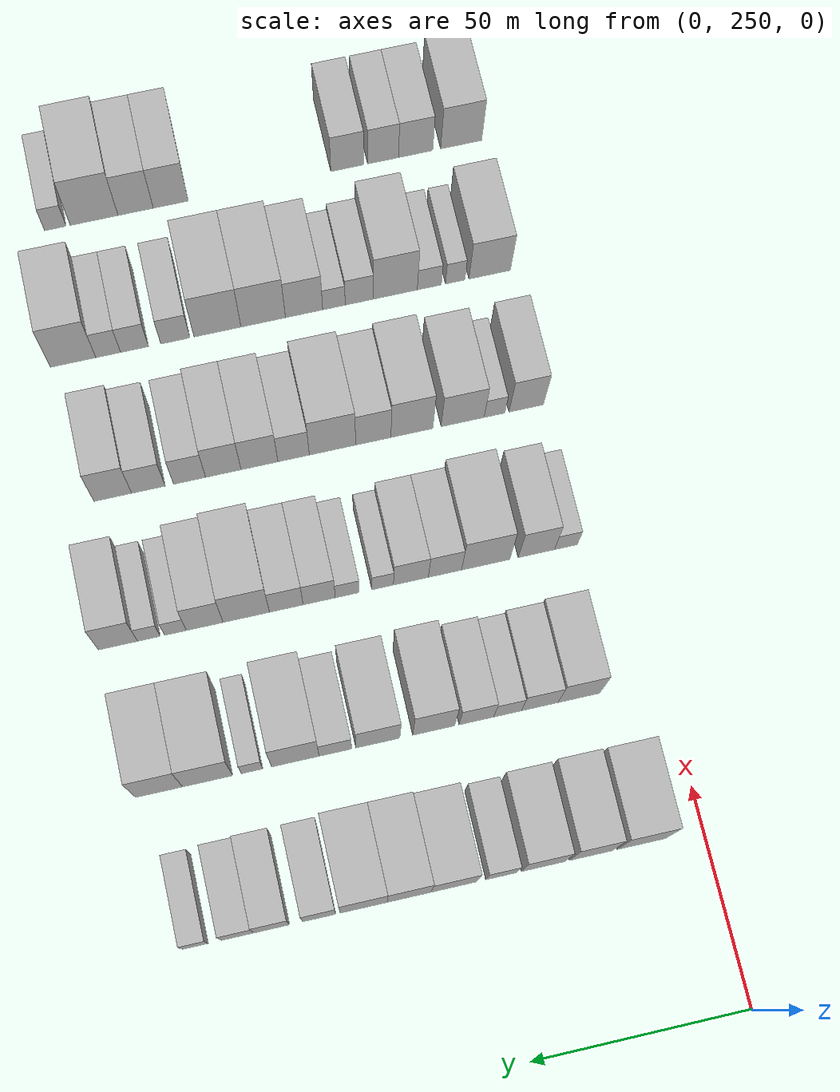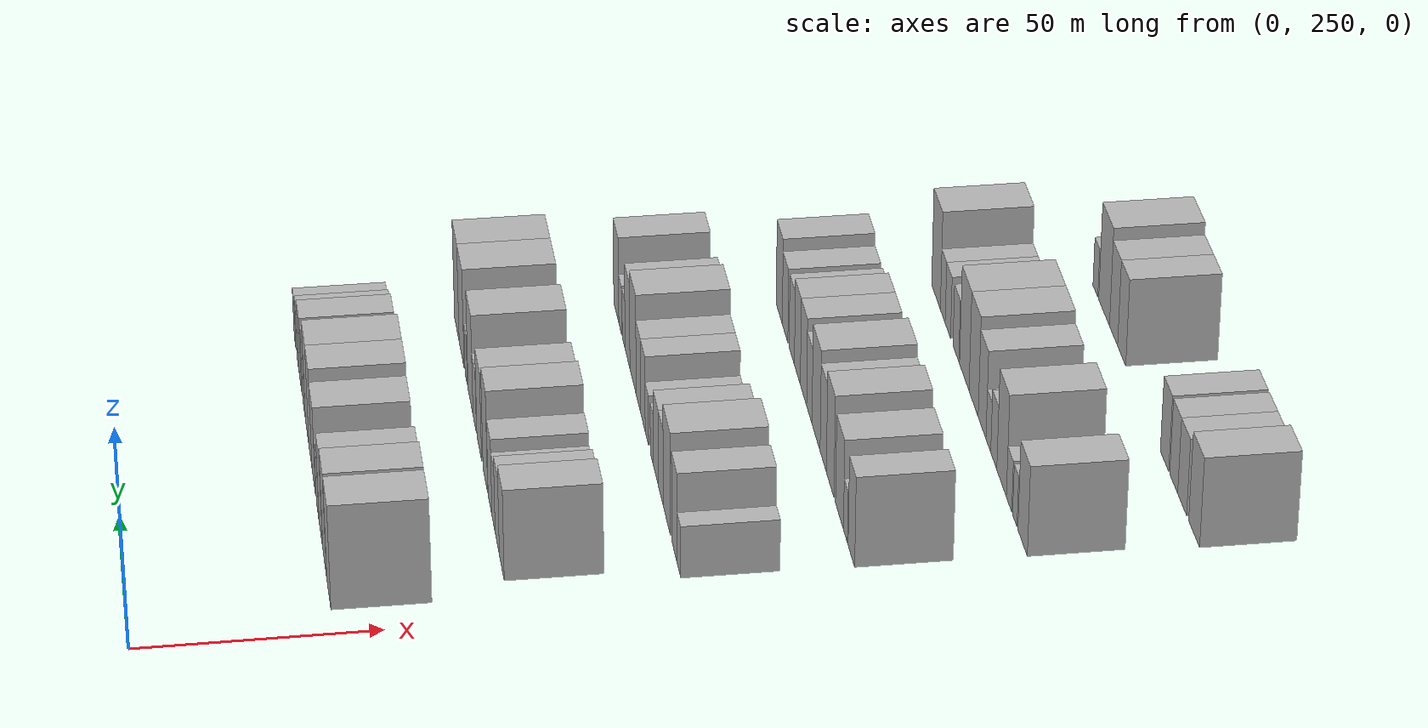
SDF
<sdf version="1.6">
 <world name="default">
  <model name="building_96">
   <static>1</static>
   <pose>50.0000 264.3981 0 0.000000 0.000000 0.000000</pose>
   <link name="link">
    <pose>0 0 12.00 0 0 0</pose>
    <collision name="collision"><geometry><box><size>20.0000 11.2214 24.0000</size></box></geometry></collision>
    <visual name="visual">
     <cast_shadows>0</cast_shadows>
     <geometry><box><size>20.0000 11.2214 24.0000</size></box></geometry>
     <material>
      <script>
       <uri>model://HANNAS_wall/materials/scripts</uri>
       <uri>model://HANNAS_wall/materials/textures</uri>
       <name>vrc/HANNAS_wall</name>
      </script>
     </material>
    </visual>
   </link>
  </model>
  <model name="building_97">
   <static>1</static>
   <pose>50.0000 275.9906 0 0.000000 0.000000 0.000000</pose>
   <link name="link">
    <pose>0 0 12.00 0 0 0</pose>
    <collision name="collision"><geometry><box><size>20.0000 9.9636 24.0000</size></box></geometry></collision>
    <visual name="visual">
     <cast_shadows>0</cast_shadows>
     <geometry><box><size>20.0000 9.9636 24.0000</size></box></geometry>
     <material>
      <script>
       <uri>model://HANNAS_wall/materials/scripts</uri>
       <uri>model://HANNAS_wall/materials/textures</uri>
       <name>vrc/HANNAS_wall</name>
      </script>
     </material>
    </visual>
   </link>
  </model>
  <model name="building_98">
   <static>1</static>
   <pose>50.0000 286.9950 0 0.000000 0.000000 0.000000</pose>
   <link name="link">
    <pose>0 0 10.50 0 0 0</pose>
    <collision name="collision"><geometry><box><size>20.0000 10.0453 21.0000</size></box></geometry></collision>
    <visual name="visual">
     <cast_shadows>0</cast_shadows>
     <geometry><box><size>20.0000 10.0453 21.0000</size></box></geometry>
     <material>
      <script>
       <uri>model://HANNAS_wall/materials/scripts</uri>
       <uri>model://HANNAS_wall/materials/textures</uri>
       <name>vrc/HANNAS_wall</name>
      </script>
     </material>
    </visual>
   </link>
  </model>
  <model name="building_99">
   <static>1</static>
   <pose>50.0000 296.5923 0 0.000000 0.000000 0.000000</pose>
   <link name="link">
    <pose>0 0 7.50 0 0 0</pose>
    <collision name="collision"><geometry><box><size>20.0000 7.1494 15.0000</size></box></geometry></collision>
    <visual name="visual">
     <cast_shadows>0</cast_shadows>
     <geometry><box><size>20.0000 7.1494 15.0000</size></box></geometry>
     <material>
      <script>
       <uri>model://HANNAS_wall/materials/scripts</uri>
       <uri>model://HANNAS_wall/materials/textures</uri>
       <name>vrc/HANNAS_wall</name>
      </script>
     </material>
    </visual>
   </link>
  </model>
  <model name="building_100">
   <static>1</static>
   <pose>50.0000 307.4089 0 0.000000 0.000000 0.000000</pose>
   <link name="link">
    <pose>0 0 10.50 0 0 0</pose>
    <collision name="collision"><geometry><box><size>20.0000 10.4838 21.0000</size></box></geometry></collision>
    <visual name="visual">
     <cast_shadows>0</cast_shadows>
     <geometry><box><size>20.0000 10.4838 21.0000</size></box></geometry>
     <material>
      <script>
       <uri>model://HANNAS_wall/materials/scripts</uri>
       <uri>model://HANNAS_wall/materials/textures</uri>
       <name>vrc/HANNAS_wall</name>
      </script>
     </material>
    </visual>
   </link>
  </model>
  <model name="building_101">
   <static>1</static>
   <pose>50.0000 317.6426 0 0.000000 0.000000 0.000000</pose>
   <link name="link">
    <pose>0 0 12.00 0 0 0</pose>
    <collision name="collision"><geometry><box><size>20.0000 9.9837 24.0000</size></box></geometry></collision>
    <visual name="visual">
     <cast_shadows>0</cast_shadows>
     <geometry><box><size>20.0000 9.9837 24.0000</size></box></geometry>
     <material>
      <script>
       <uri>model://HANNAS_wall/materials/scripts</uri>
       <uri>model://HANNAS_wall/materials/textures</uri>
       <name>vrc/HANNAS_wall</name>
      </script>
     </material>
    </visual>
   </link>
  </model>
  <model name="building_102">
   <static>1</static>
   <pose>50.0000 327.9427 0 0.000000 0.000000 0.000000</pose>
   <link name="link">
    <pose>0 0 12.00 0 0 0</pose>
    <collision name="collision"><geometry><box><size>20.0000 10.6165 24.0000</size></box></geometry></collision>
    <visual name="visual">
     <cast_shadows>0</cast_shadows>
     <geometry><box><size>20.0000 10.6165 24.0000</size></box></geometry>
     <material>
      <script>
       <uri>model://HANNAS_wall/materials/scripts</uri>
       <uri>model://HANNAS_wall/materials/textures</uri>
       <name>vrc/HANNAS_wall</name>
      </script>
     </material>
    </visual>
   </link>
  </model>
  <model name="building_103">
   <static>1</static>
   <pose>50.0000 337.9796 0 0.000000 0.000000 0.000000</pose>
   <link name="link">
    <pose>0 0 9.00 0 0 0</pose>
    <collision name="collision"><geometry><box><size>20.0000 7.4574 18.0000</size></box></geometry></collision>
    <visual name="visual">
     <cast_shadows>0</cast_shadows>
     <geometry><box><size>20.0000 7.4574 18.0000</size></box></geometry>
     <material>
      <script>
       <uri>model://HANNAS_wall/materials/scripts</uri>
       <uri>model://HANNAS_wall/materials/textures</uri>
       <name>vrc/HANNAS_wall</name>
      </script>
     </material>
    </visual>
   </link>
  </model>
  <model name="building_104">
   <static>1</static>
   <pose>50.0000 348.6979 0 0.000000 0.000000 0.000000</pose>
   <link name="link">
    <pose>0 0 9.00 0 0 0</pose>
    <collision name="collision"><geometry><box><size>20.0000 7.9792 18.0000</size></box></geometry></collision>
    <visual name="visual">
     <cast_shadows>0</cast_shadows>
     <geometry><box><size>20.0000 7.9792 18.0000</size></box></geometry>
     <material>
      <script>
       <uri>model://HANNAS_wall/materials/scripts</uri>
       <uri>model://HANNAS_wall/materials/textures</uri>
       <name>vrc/HANNAS_wall</name>
      </script>
     </material>
    </visual>
   </link>
  </model>
  <model name="building_105">
   <static>1</static>
   <pose>50.0000 356.3643 0 0.000000 0.000000 0.000000</pose>
   <link name="link">
    <pose>0 0 7.50 0 0 0</pose>
    <collision name="collision"><geometry><box><size>20.0000 7.3535 15.0000</size></box></geometry></collision>
    <visual name="visual">
     <cast_shadows>0</cast_shadows>
     <geometry><box><size>20.0000 7.3535 15.0000</size></box></geometry>
     <material>
      <script>
       <uri>model://HANNAS_wall/materials/scripts</uri>
       <uri>model://HANNAS_wall/materials/textures</uri>
       <name>vrc/HANNAS_wall</name>
      </script>
     </material>
    </visual>
   </link>
  </model>
  <model name="building_106">
   <static>1</static>
   <pose>50.0000 365.9032 0 0.000000 0.000000 0.000000</pose>
   <link name="link">
    <pose>0 0 6.00 0 0 0</pose>
    <collision name="collision"><geometry><box><size>20.0000 5.7244 12.0000</size></box></geometry></collision>
    <visual name="visual">
     <cast_shadows>0</cast_shadows>
     <geometry><box><size>20.0000 5.7244 12.0000</size></box></geometry>
     <material>
      <script>
       <uri>model://HANNAS_wall/materials/scripts</uri>
       <uri>model://HANNAS_wall/materials/textures</uri>
       <name>vrc/HANNAS_wall</name>
      </script>
     </material>
    </visual>
   </link>
  </model>
  <model name="building_223">
   <static>1</static>
   <pose>85.0000 269.8396 0 0.000000 0.000000 0.000000</pose>
   <link name="link">
    <pose>0 0 10.50 0 0 0</pose>
    <collision name="collision"><geometry><box><size>20.0000 9.7914 21.0000</size></box></geometry></collision>
    <visual name="visual">
     <cast_shadows>0</cast_shadows>
     <geometry><box><size>20.0000 9.7914 21.0000</size></box></geometry>
     <material>
      <script>
       <uri>model://HANNAS_wall/materials/scripts</uri>
       <uri>model://HANNAS_wall/materials/textures</uri>
       <name>vrc/HANNAS_wall</name>
      </script>
     </material>
    </visual>
   </link>
  </model>
  <model name="building_224">
   <static>1</static>
   <pose>85.0000 279.0362 0 0.000000 0.000000 0.000000</pose>
   <link name="link">
    <pose>0 0 9.00 0 0 0</pose>
    <collision name="collision"><geometry><box><size>20.0000 8.6018 18.0000</size></box></geometry></collision>
    <visual name="visual">
     <cast_shadows>0</cast_shadows>
     <geometry><box><size>20.0000 8.6018 18.0000</size></box></geometry>
     <material>
      <script>
       <uri>model://HANNAS_wall/materials/scripts</uri>
       <uri>model://HANNAS_wall/materials/textures</uri>
       <name>vrc/HANNAS_wall</name>
      </script>
     </material>
    </visual>
   </link>
  </model>
  <model name="building_225">
   <static>1</static>
   <pose>85.0000 286.5946 0 0.000000 0.000000 0.000000</pose>
   <link name="link">
    <pose>0 0 7.50 0 0 0</pose>
    <collision name="collision"><geometry><box><size>20.0000 6.5150 15.0000</size></box></geometry></collision>
    <visual name="visual">
     <cast_shadows>0</cast_shadows>
     <geometry><box><size>20.0000 6.5150 15.0000</size></box></geometry>
     <material>
      <script>
       <uri>model://HANNAS_wall/materials/scripts</uri>
       <uri>model://HANNAS_wall/materials/textures</uri>
       <name>vrc/HANNAS_wall</name>
      </script>
     </material>
    </visual>
   </link>
  </model>
  <model name="building_226">
   <static>1</static>
   <pose>85.0000 293.8967 0 0.000000 0.000000 0.000000</pose>
   <link name="link">
    <pose>0 0 9.00 0 0 0</pose>
    <collision name="collision"><geometry><box><size>20.0000 8.0893 18.0000</size></box></geometry></collision>
    <visual name="visual">
     <cast_shadows>0</cast_shadows>
     <geometry><box><size>20.0000 8.0893 18.0000</size></box></geometry>
     <material>
      <script>
       <uri>model://HANNAS_wall/materials/scripts</uri>
       <uri>model://HANNAS_wall/materials/textures</uri>
       <name>vrc/HANNAS_wall</name>
      </script>
     </material>
    </visual>
   </link>
  </model>
  <model name="building_227">
   <static>1</static>
   <pose>85.0000 303.8307 0 0.000000 0.000000 0.000000</pose>
   <link name="link">
    <pose>0 0 12.00 0 0 0</pose>
    <collision name="collision"><geometry><box><size>20.0000 9.7788 24.0000</size></box></geometry></collision>
    <visual name="visual">
     <cast_shadows>0</cast_shadows>
     <geometry><box><size>20.0000 9.7788 24.0000</size></box></geometry>
     <material>
      <script>
       <uri>model://HANNAS_wall/materials/scripts</uri>
       <uri>model://HANNAS_wall/materials/textures</uri>
       <name>vrc/HANNAS_wall</name>
      </script>
     </material>
    </visual>
   </link>
  </model>
  <model name="building_228">
   <static>1</static>
   <pose>85.0000 316.8166 0 0.000000 0.000000 0.000000</pose>
   <link name="link">
    <pose>0 0 10.50 0 0 0</pose>
    <collision name="collision"><geometry><box><size>20.0000 10.1930 21.0000</size></box></geometry></collision>
    <visual name="visual">
     <cast_shadows>0</cast_shadows>
     <geometry><box><size>20.0000 10.1930 21.0000</size></box></geometry>
     <material>
      <script>
       <uri>model://HANNAS_wall/materials/scripts</uri>
       <uri>model://HANNAS_wall/materials/textures</uri>
       <name>vrc/HANNAS_wall</name>
      </script>
     </material>
    </visual>
   </link>
  </model>
  <model name="building_229">
   <static>1</static>
   <pose>85.0000 326.6620 0 0.000000 0.000000 0.000000</pose>
   <link name="link">
    <pose>0 0 7.50 0 0 0</pose>
    <collision name="collision"><geometry><box><size>20.0000 7.4978 15.0000</size></box></geometry></collision>
    <visual name="visual">
     <cast_shadows>0</cast_shadows>
     <geometry><box><size>20.0000 7.4978 15.0000</size></box></geometry>
     <material>
      <script>
       <uri>model://HANNAS_wall/materials/scripts</uri>
       <uri>model://HANNAS_wall/materials/textures</uri>
       <name>vrc/HANNAS_wall</name>
      </script>
     </material>
    </visual>
   </link>
  </model>
  <model name="building_230">
   <static>1</static>
   <pose>85.0000 335.9125 0 0.000000 0.000000 0.000000</pose>
   <link name="link">
    <pose>0 0 12.00 0 0 0</pose>
    <collision name="collision"><geometry><box><size>20.0000 11.0033 24.0000</size></box></geometry></collision>
    <visual name="visual">
     <cast_shadows>0</cast_shadows>
     <geometry><box><size>20.0000 11.0033 24.0000</size></box></geometry>
     <material>
      <script>
       <uri>model://HANNAS_wall/materials/scripts</uri>
       <uri>model://HANNAS_wall/materials/textures</uri>
       <name>vrc/HANNAS_wall</name>
      </script>
     </material>
    </visual>
   </link>
  </model>
  <model name="building_231">
   <static>1</static>
   <pose>85.0000 345.8811 0 0.000000 0.000000 0.000000</pose>
   <link name="link">
    <pose>0 0 6.00 0 0 0</pose>
    <collision name="collision"><geometry><box><size>20.0000 4.9339 12.0000</size></box></geometry></collision>
    <visual name="visual">
     <cast_shadows>0</cast_shadows>
     <geometry><box><size>20.0000 4.9339 12.0000</size></box></geometry>
     <material>
      <script>
       <uri>model://HANNAS_wall/materials/scripts</uri>
       <uri>model://HANNAS_wall/materials/textures</uri>
       <name>vrc/HANNAS_wall</name>
      </script>
     </material>
    </visual>
   </link>
  </model>
  <model name="building_232">
   <static>1</static>
   <pose>85.0000 356.1012 0 0.000000 0.000000 0.000000</pose>
   <link name="link">
    <pose>0 0 12.00 0 0 0</pose>
    <collision name="collision"><geometry><box><size>20.0000 11.5063 24.0000</size></box></geometry></collision>
    <visual name="visual">
     <cast_shadows>0</cast_shadows>
     <geometry><box><size>20.0000 11.5063 24.0000</size></box></geometry>
     <material>
      <script>
       <uri>model://HANNAS_wall/materials/scripts</uri>
       <uri>model://HANNAS_wall/materials/textures</uri>
       <name>vrc/HANNAS_wall</name>
      </script>
     </material>
    </visual>
   </link>
  </model>
  <model name="building_233">
   <static>1</static>
   <pose>85.0000 367.2302 0 0.000000 0.000000 0.000000</pose>
   <link name="link">
    <pose>0 0 12.00 0 0 0</pose>
    <collision name="collision"><geometry><box><size>20.0000 10.7517 24.0000</size></box></geometry></collision>
    <visual name="visual">
     <cast_shadows>0</cast_shadows>
     <geometry><box><size>20.0000 10.7517 24.0000</size></box></geometry>
     <material>
      <script>
       <uri>model://HANNAS_wall/materials/scripts</uri>
       <uri>model://HANNAS_wall/materials/textures</uri>
       <name>vrc/HANNAS_wall</name>
      </script>
     </material>
    </visual>
   </link>
  </model>
  <model name="building_342">
   <static>1</static>
   <pose>120.0000 264.0317 0 0.000000 0.000000 0.000000</pose>
   <link name="link">
    <pose>0 0 6.00 0 0 0</pose>
    <collision name="collision"><geometry><box><size>20.0000 5.4793 12.0000</size></box></geometry></collision>
    <visual name="visual">
     <cast_shadows>0</cast_shadows>
     <geometry><box><size>20.0000 5.4793 12.0000</size></box></geometry>
     <material>
      <script>
       <uri>model://HANNAS_wall/materials/scripts</uri>
       <uri>model://HANNAS_wall/materials/textures</uri>
       <name>vrc/HANNAS_wall</name>
      </script>
     </material>
    </visual>
   </link>
  </model>
  <model name="building_343">
   <static>1</static>
   <pose>120.0000 271.1161 0 0.000000 0.000000 0.000000</pose>
   <link name="link">
    <pose>0 0 10.50 0 0 0</pose>
    <collision name="collision"><geometry><box><size>20.0000 8.6894 21.0000</size></box></geometry></collision>
    <visual name="visual">
     <cast_shadows>0</cast_shadows>
     <geometry><box><size>20.0000 8.6894 21.0000</size></box></geometry>
     <material>
      <script>
       <uri>model://HANNAS_wall/materials/scripts</uri>
       <uri>model://HANNAS_wall/materials/textures</uri>
       <name>vrc/HANNAS_wall</name>
      </script>
     </material>
    </visual>
   </link>
  </model>
  <model name="building_344">
   <static>1</static>
   <pose>120.0000 283.2201 0 0.000000 0.000000 0.000000</pose>
   <link name="link">
    <pose>0 0 12.00 0 0 0</pose>
    <collision name="collision"><geometry><box><size>20.0000 11.5185 24.0000</size></box></geometry></collision>
    <visual name="visual">
     <cast_shadows>0</cast_shadows>
     <geometry><box><size>20.0000 11.5185 24.0000</size></box></geometry>
     <material>
      <script>
       <uri>model://HANNAS_wall/materials/scripts</uri>
       <uri>model://HANNAS_wall/materials/textures</uri>
       <name>vrc/HANNAS_wall</name>
      </script>
     </material>
    </visual>
   </link>
  </model>
  <model name="building_345">
   <static>1</static>
   <pose>120.0000 292.9364 0 0.000000 0.000000 0.000000</pose>
   <link name="link">
    <pose>0 0 9.00 0 0 0</pose>
    <collision name="collision"><geometry><box><size>20.0000 7.9142 18.0000</size></box></geometry></collision>
    <visual name="visual">
     <cast_shadows>0</cast_shadows>
     <geometry><box><size>20.0000 7.9142 18.0000</size></box></geometry>
     <material>
      <script>
       <uri>model://HANNAS_wall/materials/scripts</uri>
       <uri>model://HANNAS_wall/materials/textures</uri>
       <name>vrc/HANNAS_wall</name>
      </script>
     </material>
    </visual>
   </link>
  </model>
  <model name="building_346">
   <static>1</static>
   <pose>120.0000 301.0498 0 0.000000 0.000000 0.000000</pose>
   <link name="link">
    <pose>0 0 9.00 0 0 0</pose>
    <collision name="collision"><geometry><box><size>20.0000 8.3126 18.0000</size></box></geometry></collision>
    <visual name="visual">
     <cast_shadows>0</cast_shadows>
     <geometry><box><size>20.0000 8.3126 18.0000</size></box></geometry>
     <material>
      <script>
       <uri>model://HANNAS_wall/materials/scripts</uri>
       <uri>model://HANNAS_wall/materials/textures</uri>
       <name>vrc/HANNAS_wall</name>
      </script>
     </material>
    </visual>
   </link>
  </model>
  <model name="building_347">
   <static>1</static>
   <pose>120.0000 307.7546 0 0.000000 0.000000 0.000000</pose>
   <link name="link">
    <pose>0 0 6.00 0 0 0</pose>
    <collision name="collision"><geometry><box><size>20.0000 5.0969 12.0000</size></box></geometry></collision>
    <visual name="visual">
     <cast_shadows>0</cast_shadows>
     <geometry><box><size>20.0000 5.0969 12.0000</size></box></geometry>
     <material>
      <script>
       <uri>model://HANNAS_wall/materials/scripts</uri>
       <uri>model://HANNAS_wall/materials/textures</uri>
       <name>vrc/HANNAS_wall</name>
      </script>
     </material>
    </visual>
   </link>
  </model>
  <model name="building_348">
   <static>1</static>
   <pose>120.0000 316.1523 0 0.000000 0.000000 0.000000</pose>
   <link name="link">
    <pose>0 0 6.00 0 0 0</pose>
    <collision name="collision"><geometry><box><size>20.0000 5.6986 12.0000</size></box></geometry></collision>
    <visual name="visual">
     <cast_shadows>0</cast_shadows>
     <geometry><box><size>20.0000 5.6986 12.0000</size></box></geometry>
     <material>
      <script>
       <uri>model://HANNAS_wall/materials/scripts</uri>
       <uri>model://HANNAS_wall/materials/textures</uri>
       <name>vrc/HANNAS_wall</name>
      </script>
     </material>
    </visual>
   </link>
  </model>
  <model name="building_349">
   <static>1</static>
   <pose>120.0000 322.7863 0 0.000000 0.000000 0.000000</pose>
   <link name="link">
    <pose>0 0 9.00 0 0 0</pose>
    <collision name="collision"><geometry><box><size>20.0000 7.5694 18.0000</size></box></geometry></collision>
    <visual name="visual">
     <cast_shadows>0</cast_shadows>
     <geometry><box><size>20.0000 7.5694 18.0000</size></box></geometry>
     <material>
      <script>
       <uri>model://HANNAS_wall/materials/scripts</uri>
       <uri>model://HANNAS_wall/materials/textures</uri>
       <name>vrc/HANNAS_wall</name>
      </script>
     </material>
    </visual>
   </link>
  </model>
  <model name="building_350">
   <static>1</static>
   <pose>120.0000 330.5401 0 0.000000 0.000000 0.000000</pose>
   <link name="link">
    <pose>0 0 9.00 0 0 0</pose>
    <collision name="collision"><geometry><box><size>20.0000 7.9380 18.0000</size></box></geometry></collision>
    <visual name="visual">
     <cast_shadows>0</cast_shadows>
     <geometry><box><size>20.0000 7.9380 18.0000</size></box></geometry>
     <material>
      <script>
       <uri>model://HANNAS_wall/materials/scripts</uri>
       <uri>model://HANNAS_wall/materials/textures</uri>
       <name>vrc/HANNAS_wall</name>
      </script>
     </material>
    </visual>
   </link>
  </model>
  <model name="building_351">
   <static>1</static>
   <pose>120.0000 339.9615 0 0.000000 0.000000 0.000000</pose>
   <link name="link">
    <pose>0 0 12.00 0 0 0</pose>
    <collision name="collision"><geometry><box><size>20.0000 10.9048 24.0000</size></box></geometry></collision>
    <visual name="visual">
     <cast_shadows>0</cast_shadows>
     <geometry><box><size>20.0000 10.9048 24.0000</size></box></geometry>
     <material>
      <script>
       <uri>model://HANNAS_wall/materials/scripts</uri>
       <uri>model://HANNAS_wall/materials/textures</uri>
       <name>vrc/HANNAS_wall</name>
      </script>
     </material>
    </visual>
   </link>
  </model>
  <model name="building_352">
   <static>1</static>
   <pose>120.0000 349.7210 0 0.000000 0.000000 0.000000</pose>
   <link name="link">
    <pose>0 0 10.50 0 0 0</pose>
    <collision name="collision"><geometry><box><size>20.0000 8.6142 21.0000</size></box></geometry></collision>
    <visual name="visual">
     <cast_shadows>0</cast_shadows>
     <geometry><box><size>20.0000 8.6142 21.0000</size></box></geometry>
     <material>
      <script>
       <uri>model://HANNAS_wall/materials/scripts</uri>
       <uri>model://HANNAS_wall/materials/textures</uri>
       <name>vrc/HANNAS_wall</name>
      </script>
     </material>
    </visual>
   </link>
  </model>
  <model name="building_353">
   <static>1</static>
   <pose>120.0000 356.5846 0 0.000000 0.000000 0.000000</pose>
   <link name="link">
    <pose>0 0 6.00 0 0 0</pose>
    <collision name="collision"><geometry><box><size>20.0000 5.1131 12.0000</size></box></geometry></collision>
    <visual name="visual">
     <cast_shadows>0</cast_shadows>
     <geometry><box><size>20.0000 5.1131 12.0000</size></box></geometry>
     <material>
      <script>
       <uri>model://HANNAS_wall/materials/scripts</uri>
       <uri>model://HANNAS_wall/materials/textures</uri>
       <name>vrc/HANNAS_wall</name>
      </script>
     </material>
    </visual>
   </link>
  </model>
  <model name="building_354">
   <static>1</static>
   <pose>120.0000 362.7888 0 0.000000 0.000000 0.000000</pose>
   <link name="link">
    <pose>0 0 6.00 0 0 0</pose>
    <collision name="collision"><geometry><box><size>20.0000 5.2953 12.0000</size></box></geometry></collision>
    <visual name="visual">
     <cast_shadows>0</cast_shadows>
     <geometry><box><size>20.0000 5.2953 12.0000</size></box></geometry>
     <material>
      <script>
       <uri>model://HANNAS_wall/materials/scripts</uri>
       <uri>model://HANNAS_wall/materials/textures</uri>
       <name>vrc/HANNAS_wall</name>
      </script>
     </material>
    </visual>
   </link>
  </model>
  <model name="building_355">
   <static>1</static>
   <pose>120.0000 370.0110 0 0.000000 0.000000 0.000000</pose>
   <link name="link">
    <pose>0 0 10.50 0 0 0</pose>
    <collision name="collision"><geometry><box><size>20.0000 9.1492 21.0000</size></box></geometry></collision>
    <visual name="visual">
     <cast_shadows>0</cast_shadows>
     <geometry><box><size>20.0000 9.1492 21.0000</size></box></geometry>
     <material>
      <script>
       <uri>model://HANNAS_wall/materials/scripts</uri>
       <uri>model://HANNAS_wall/materials/textures</uri>
       <name>vrc/HANNAS_wall</name>
      </script>
     </material>
    </visual>
   </link>
  </model>
  <model name="building_470">
   <static>1</static>
   <pose>155.0000 264.8716 0 0.000000 0.000000 0.000000</pose>
   <link name="link">
    <pose>0 0 10.50 0 0 0</pose>
    <collision name="collision"><geometry><box><size>20.0000 8.4192 21.0000</size></box></geometry></collision>
    <visual name="visual">
     <cast_shadows>0</cast_shadows>
     <geometry><box><size>20.0000 8.4192 21.0000</size></box></geometry>
     <material>
      <script>
       <uri>model://HANNAS_wall/materials/scripts</uri>
       <uri>model://HANNAS_wall/materials/textures</uri>
       <name>vrc/HANNAS_wall</name>
      </script>
     </material>
    </visual>
   </link>
  </model>
  <model name="building_471">
   <static>1</static>
   <pose>155.0000 272.6042 0 0.000000 0.000000 0.000000</pose>
   <link name="link">
    <pose>0 0 6.00 0 0 0</pose>
    <collision name="collision"><geometry><box><size>20.0000 5.0459 12.0000</size></box></geometry></collision>
    <visual name="visual">
     <cast_shadows>0</cast_shadows>
     <geometry><box><size>20.0000 5.0459 12.0000</size></box></geometry>
     <material>
      <script>
       <uri>model://HANNAS_wall/materials/scripts</uri>
       <uri>model://HANNAS_wall/materials/textures</uri>
       <name>vrc/HANNAS_wall</name>
      </script>
     </material>
    </visual>
   </link>
  </model>
  <model name="building_472">
   <static>1</static>
   <pose>155.0000 280.3746 0 0.000000 0.000000 0.000000</pose>
   <link name="link">
    <pose>0 0 10.50 0 0 0</pose>
    <collision name="collision"><geometry><box><size>20.0000 10.4950 21.0000</size></box></geometry></collision>
    <visual name="visual">
     <cast_shadows>0</cast_shadows>
     <geometry><box><size>20.0000 10.4950 21.0000</size></box></geometry>
     <material>
      <script>
       <uri>model://HANNAS_wall/materials/scripts</uri>
       <uri>model://HANNAS_wall/materials/textures</uri>
       <name>vrc/HANNAS_wall</name>
      </script>
     </material>
    </visual>
   </link>
  </model>
  <model name="building_473">
   <static>1</static>
   <pose>155.0000 292.7213 0 0.000000 0.000000 0.000000</pose>
   <link name="link">
    <pose>0 0 12.00 0 0 0</pose>
    <collision name="collision"><geometry><box><size>20.0000 10.1983 24.0000</size></box></geometry></collision>
    <visual name="visual">
     <cast_shadows>0</cast_shadows>
     <geometry><box><size>20.0000 10.1983 24.0000</size></box></geometry>
     <material>
      <script>
       <uri>model://HANNAS_wall/materials/scripts</uri>
       <uri>model://HANNAS_wall/materials/textures</uri>
       <name>vrc/HANNAS_wall</name>
      </script>
     </material>
    </visual>
   </link>
  </model>
  <model name="building_474">
   <static>1</static>
   <pose>155.0000 302.0869 0 0.000000 0.000000 0.000000</pose>
   <link name="link">
    <pose>0 0 10.50 0 0 0</pose>
    <collision name="collision"><geometry><box><size>20.0000 8.5328 21.0000</size></box></geometry></collision>
    <visual name="visual">
     <cast_shadows>0</cast_shadows>
     <geometry><box><size>20.0000 8.5328 21.0000</size></box></geometry>
     <material>
      <script>
       <uri>model://HANNAS_wall/materials/scripts</uri>
       <uri>model://HANNAS_wall/materials/textures</uri>
       <name>vrc/HANNAS_wall</name>
      </script>
     </material>
    </visual>
   </link>
  </model>
  <model name="building_475">
   <static>1</static>
   <pose>155.0000 311.9443 0 0.000000 0.000000 0.000000</pose>
   <link name="link">
    <pose>0 0 12.00 0 0 0</pose>
    <collision name="collision"><geometry><box><size>20.0000 11.1820 24.0000</size></box></geometry></collision>
    <visual name="visual">
     <cast_shadows>0</cast_shadows>
     <geometry><box><size>20.0000 11.1820 24.0000</size></box></geometry>
     <material>
      <script>
       <uri>model://HANNAS_wall/materials/scripts</uri>
       <uri>model://HANNAS_wall/materials/textures</uri>
       <name>vrc/HANNAS_wall</name>
      </script>
     </material>
    </visual>
   </link>
  </model>
  <model name="building_476">
   <static>1</static>
   <pose>155.0000 321.3191 0 0.000000 0.000000 0.000000</pose>
   <link name="link">
    <pose>0 0 9.00 0 0 0</pose>
    <collision name="collision"><geometry><box><size>20.0000 7.5677 18.0000</size></box></geometry></collision>
    <visual name="visual">
     <cast_shadows>0</cast_shadows>
     <geometry><box><size>20.0000 7.5677 18.0000</size></box></geometry>
     <material>
      <script>
       <uri>model://HANNAS_wall/materials/scripts</uri>
       <uri>model://HANNAS_wall/materials/textures</uri>
       <name>vrc/HANNAS_wall</name>
      </script>
     </material>
    </visual>
   </link>
  </model>
  <model name="building_477">
   <static>1</static>
   <pose>155.0000 329.5386 0 0.000000 0.000000 0.000000</pose>
   <link name="link">
    <pose>0 0 10.50 0 0 0</pose>
    <collision name="collision"><geometry><box><size>20.0000 8.8713 21.0000</size></box></geometry></collision>
    <visual name="visual">
     <cast_shadows>0</cast_shadows>
     <geometry><box><size>20.0000 8.8713 21.0000</size></box></geometry>
     <material>
      <script>
       <uri>model://HANNAS_wall/materials/scripts</uri>
       <uri>model://HANNAS_wall/materials/textures</uri>
       <name>vrc/HANNAS_wall</name>
      </script>
     </material>
    </visual>
   </link>
  </model>
  <model name="building_478">
   <static>1</static>
   <pose>155.0000 338.2287 0 0.000000 0.000000 0.000000</pose>
   <link name="link">
    <pose>0 0 10.50 0 0 0</pose>
    <collision name="collision"><geometry><box><size>20.0000 8.5089 21.0000</size></box></geometry></collision>
    <visual name="visual">
     <cast_shadows>0</cast_shadows>
     <geometry><box><size>20.0000 8.5089 21.0000</size></box></geometry>
     <material>
      <script>
       <uri>model://HANNAS_wall/materials/scripts</uri>
       <uri>model://HANNAS_wall/materials/textures</uri>
       <name>vrc/HANNAS_wall</name>
      </script>
     </material>
    </visual>
   </link>
  </model>
  <model name="building_479">
   <static>1</static>
   <pose>155.0000 346.3137 0 0.000000 0.000000 0.000000</pose>
   <link name="link">
    <pose>0 0 9.00 0 0 0</pose>
    <collision name="collision"><geometry><box><size>20.0000 7.6611 18.0000</size></box></geometry></collision>
    <visual name="visual">
     <cast_shadows>0</cast_shadows>
     <geometry><box><size>20.0000 7.6611 18.0000</size></box></geometry>
     <material>
      <script>
       <uri>model://HANNAS_wall/materials/scripts</uri>
       <uri>model://HANNAS_wall/materials/textures</uri>
       <name>vrc/HANNAS_wall</name>
      </script>
     </material>
    </visual>
   </link>
  </model>
  <model name="building_480">
   <static>1</static>
   <pose>155.0000 356.1506 0 0.000000 0.000000 0.000000</pose>
   <link name="link">
    <pose>0 0 9.00 0 0 0</pose>
    <collision name="collision"><geometry><box><size>20.0000 8.0125 18.0000</size></box></geometry></collision>
    <visual name="visual">
     <cast_shadows>0</cast_shadows>
     <geometry><box><size>20.0000 8.0125 18.0000</size></box></geometry>
     <material>
      <script>
       <uri>model://HANNAS_wall/materials/scripts</uri>
       <uri>model://HANNAS_wall/materials/textures</uri>
       <name>vrc/HANNAS_wall</name>
      </script>
     </material>
    </visual>
   </link>
  </model>
  <model name="building_481">
   <static>1</static>
   <pose>155.0000 364.6520 0 0.000000 0.000000 0.000000</pose>
   <link name="link">
    <pose>0 0 10.50 0 0 0</pose>
    <collision name="collision"><geometry><box><size>20.0000 8.9903 21.0000</size></box></geometry></collision>
    <visual name="visual">
     <cast_shadows>0</cast_shadows>
     <geometry><box><size>20.0000 8.9903 21.0000</size></box></geometry>
     <material>
      <script>
       <uri>model://HANNAS_wall/materials/scripts</uri>
       <uri>model://HANNAS_wall/materials/textures</uri>
       <name>vrc/HANNAS_wall</name>
      </script>
     </material>
    </visual>
   </link>
  </model>
  <model name="building_597">
   <static>1</static>
   <pose>190.0000 265.3090 0 0.000000 0.000000 0.000000</pose>
   <link name="link">
    <pose>0 0 10.50 0 0 0</pose>
    <collision name="collision"><geometry><box><size>20.0000 10.3184 21.0000</size></box></geometry></collision>
    <visual name="visual">
     <cast_shadows>0</cast_shadows>
     <geometry><box><size>20.0000 10.3184 21.0000</size></box></geometry>
     <material>
      <script>
       <uri>model://HANNAS_wall/materials/scripts</uri>
       <uri>model://HANNAS_wall/materials/textures</uri>
       <name>vrc/HANNAS_wall</name>
      </script>
     </material>
    </visual>
   </link>
  </model>
  <model name="building_598">
   <static>1</static>
   <pose>190.0000 273.8896 0 0.000000 0.000000 0.000000</pose>
   <link name="link">
    <pose>0 0 6.00 0 0 0</pose>
    <collision name="collision"><geometry><box><size>20.0000 4.8429 12.0000</size></box></geometry></collision>
    <visual name="visual">
     <cast_shadows>0</cast_shadows>
     <geometry><box><size>20.0000 4.8429 12.0000</size></box></geometry>
     <material>
      <script>
       <uri>model://HANNAS_wall/materials/scripts</uri>
       <uri>model://HANNAS_wall/materials/textures</uri>
       <name>vrc/HANNAS_wall</name>
      </script>
     </material>
    </visual>
   </link>
  </model>
  <model name="building_599">
   <static>1</static>
   <pose>190.0000 280.2977 0 0.000000 0.000000 0.000000</pose>
   <link name="link">
    <pose>0 0 6.00 0 0 0</pose>
    <collision name="collision"><geometry><box><size>20.0000 5.9732 12.0000</size></box></geometry></collision>
    <visual name="visual">
     <cast_shadows>0</cast_shadows>
     <geometry><box><size>20.0000 5.9732 12.0000</size></box></geometry>
     <material>
      <script>
       <uri>model://HANNAS_wall/materials/scripts</uri>
       <uri>model://HANNAS_wall/materials/textures</uri>
       <name>vrc/HANNAS_wall</name>
      </script>
     </material>
    </visual>
   </link>
  </model>
  <model name="building_600">
   <static>1</static>
   <pose>190.0000 288.7168 0 0.000000 0.000000 0.000000</pose>
   <link name="link">
    <pose>0 0 12.00 0 0 0</pose>
    <collision name="collision"><geometry><box><size>20.0000 10.8650 24.0000</size></box></geometry></collision>
    <visual name="visual">
     <cast_shadows>0</cast_shadows>
     <geometry><box><size>20.0000 10.8650 24.0000</size></box></geometry>
     <material>
      <script>
       <uri>model://HANNAS_wall/materials/scripts</uri>
       <uri>model://HANNAS_wall/materials/textures</uri>
       <name>vrc/HANNAS_wall</name>
      </script>
     </material>
    </visual>
   </link>
  </model>
  <model name="building_601">
   <static>1</static>
   <pose>190.0000 297.6306 0 0.000000 0.000000 0.000000</pose>
   <link name="link">
    <pose>0 0 7.50 0 0 0</pose>
    <collision name="collision"><geometry><box><size>20.0000 6.9627 15.0000</size></box></geometry></collision>
    <visual name="visual">
     <cast_shadows>0</cast_shadows>
     <geometry><box><size>20.0000 6.9627 15.0000</size></box></geometry>
     <material>
      <script>
       <uri>model://HANNAS_wall/materials/scripts</uri>
       <uri>model://HANNAS_wall/materials/textures</uri>
       <name>vrc/HANNAS_wall</name>
      </script>
     </material>
    </visual>
   </link>
  </model>
  <model name="building_602">
   <static>1</static>
   <pose>190.0000 303.8923 0 0.000000 0.000000 0.000000</pose>
   <link name="link">
    <pose>0 0 6.00 0 0 0</pose>
    <collision name="collision"><geometry><box><size>20.0000 5.5605 12.0000</size></box></geometry></collision>
    <visual name="visual">
     <cast_shadows>0</cast_shadows>
     <geometry><box><size>20.0000 5.5605 12.0000</size></box></geometry>
     <material>
      <script>
       <uri>model://HANNAS_wall/materials/scripts</uri>
       <uri>model://HANNAS_wall/materials/textures</uri>
       <name>vrc/HANNAS_wall</name>
      </script>
     </material>
    </visual>
   </link>
  </model>
  <model name="building_603">
   <static>1</static>
   <pose>190.0000 311.2498 0 0.000000 0.000000 0.000000</pose>
   <link name="link">
    <pose>0 0 10.50 0 0 0</pose>
    <collision name="collision"><geometry><box><size>20.0000 9.1545 21.0000</size></box></geometry></collision>
    <visual name="visual">
     <cast_shadows>0</cast_shadows>
     <geometry><box><size>20.0000 9.1545 21.0000</size></box></geometry>
     <material>
      <script>
       <uri>model://HANNAS_wall/materials/scripts</uri>
       <uri>model://HANNAS_wall/materials/textures</uri>
       <name>vrc/HANNAS_wall</name>
      </script>
     </material>
    </visual>
   </link>
  </model>
  <model name="building_604">
   <static>1</static>
   <pose>190.0000 321.2956 0 0.000000 0.000000 0.000000</pose>
   <link name="link">
    <pose>0 0 12.00 0 0 0</pose>
    <collision name="collision"><geometry><box><size>20.0000 10.9373 24.0000</size></box></geometry></collision>
    <visual name="visual">
     <cast_shadows>0</cast_shadows>
     <geometry><box><size>20.0000 10.9373 24.0000</size></box></geometry>
     <material>
      <script>
       <uri>model://HANNAS_wall/materials/scripts</uri>
       <uri>model://HANNAS_wall/materials/textures</uri>
       <name>vrc/HANNAS_wall</name>
      </script>
     </material>
    </visual>
   </link>
  </model>
  <model name="building_605">
   <static>1</static>
   <pose>190.0000 332.5106 0 0.000000 0.000000 0.000000</pose>
   <link name="link">
    <pose>0 0 12.00 0 0 0</pose>
    <collision name="collision"><geometry><box><size>20.0000 11.4927 24.0000</size></box></geometry></collision>
    <visual name="visual">
     <cast_shadows>0</cast_shadows>
     <geometry><box><size>20.0000 11.4927 24.0000</size></box></geometry>
     <material>
      <script>
       <uri>model://HANNAS_wall/materials/scripts</uri>
       <uri>model://HANNAS_wall/materials/textures</uri>
       <name>vrc/HANNAS_wall</name>
      </script>
     </material>
    </visual>
   </link>
  </model>
  <model name="building_606">
   <static>1</static>
   <pose>190.0000 342.8165 0 0.000000 0.000000 0.000000</pose>
   <link name="link">
    <pose>0 0 7.50 0 0 0</pose>
    <collision name="collision"><geometry><box><size>20.0000 7.1190 15.0000</size></box></geometry></collision>
    <visual name="visual">
     <cast_shadows>0</cast_shadows>
     <geometry><box><size>20.0000 7.1190 15.0000</size></box></geometry>
     <material>
      <script>
       <uri>model://HANNAS_wall/materials/scripts</uri>
       <uri>model://HANNAS_wall/materials/textures</uri>
       <name>vrc/HANNAS_wall</name>
      </script>
     </material>
    </visual>
   </link>
  </model>
  <model name="building_607">
   <static>1</static>
   <pose>190.0000 352.7620 0 0.000000 0.000000 0.000000</pose>
   <link name="link">
    <pose>0 0 7.50 0 0 0</pose>
    <collision name="collision"><geometry><box><size>20.0000 6.7722 15.0000</size></box></geometry></collision>
    <visual name="visual">
     <cast_shadows>0</cast_shadows>
     <geometry><box><size>20.0000 6.7722 15.0000</size></box></geometry>
     <material>
      <script>
       <uri>model://HANNAS_wall/materials/scripts</uri>
       <uri>model://HANNAS_wall/materials/textures</uri>
       <name>vrc/HANNAS_wall</name>
      </script>
     </material>
    </visual>
   </link>
  </model>
  <model name="building_608">
   <static>1</static>
   <pose>190.0000 359.1685 0 0.000000 0.000000 0.000000</pose>
   <link name="link">
    <pose>0 0 7.50 0 0 0</pose>
    <collision name="collision"><geometry><box><size>20.0000 6.0407 15.0000</size></box></geometry></collision>
    <visual name="visual">
     <cast_shadows>0</cast_shadows>
     <geometry><box><size>20.0000 6.0407 15.0000</size></box></geometry>
     <material>
      <script>
       <uri>model://HANNAS_wall/materials/scripts</uri>
       <uri>model://HANNAS_wall/materials/textures</uri>
       <name>vrc/HANNAS_wall</name>
      </script>
     </material>
    </visual>
   </link>
  </model>
  <model name="building_609">
   <static>1</static>
   <pose>190.0000 367.7236 0 0.000000 0.000000 0.000000</pose>
   <link name="link">
    <pose>0 0 12.00 0 0 0</pose>
    <collision name="collision"><geometry><box><size>20.0000 11.0696 24.0000</size></box></geometry></collision>
    <visual name="visual">
     <cast_shadows>0</cast_shadows>
     <geometry><box><size>20.0000 11.0696 24.0000</size></box></geometry>
     <material>
      <script>
       <uri>model://HANNAS_wall/materials/scripts</uri>
       <uri>model://HANNAS_wall/materials/textures</uri>
       <name>vrc/HANNAS_wall</name>
      </script>
     </material>
    </visual>
   </link>
  </model>
  <model name="building_727">
   <static>1</static>
   <pose>225.0000 264.0481 0 0.000000 0.000000 0.000000</pose>
   <link name="link">
    <pose>0 0 10.50 0 0 0</pose>
    <collision name="collision"><geometry><box><size>20.0000 10.4155 21.0000</size></box></geometry></collision>
    <visual name="visual">
     <cast_shadows>0</cast_shadows>
     <geometry><box><size>20.0000 10.4155 21.0000</size></box></geometry>
     <material>
      <script>
       <uri>model://HANNAS_wall/materials/scripts</uri>
       <uri>model://HANNAS_wall/materials/textures</uri>
       <name>vrc/HANNAS_wall</name>
      </script>
     </material>
    </visual>
   </link>
  </model>
  <model name="building_728">
   <static>1</static>
   <pose>225.0000 275.5824 0 0.000000 0.000000 0.000000</pose>
   <link name="link">
    <pose>0 0 9.00 0 0 0</pose>
    <collision name="collision"><geometry><box><size>20.0000 8.6531 18.0000</size></box></geometry></collision>
    <visual name="visual">
     <cast_shadows>0</cast_shadows>
     <geometry><box><size>20.0000 8.6531 18.0000</size></box></geometry>
     <material>
      <script>
       <uri>model://HANNAS_wall/materials/scripts</uri>
       <uri>model://HANNAS_wall/materials/textures</uri>
       <name>vrc/HANNAS_wall</name>
      </script>
     </material>
    </visual>
   </link>
  </model>
  <model name="building_729">
   <static>1</static>
   <pose>225.0000 283.8137 0 0.000000 0.000000 0.000000</pose>
   <link name="link">
    <pose>0 0 9.00 0 0 0</pose>
    <collision name="collision"><geometry><box><size>20.0000 7.8093 18.0000</size></box></geometry></collision>
    <visual name="visual">
     <cast_shadows>0</cast_shadows>
     <geometry><box><size>20.0000 7.8093 18.0000</size></box></geometry>
     <material>
      <script>
       <uri>model://HANNAS_wall/materials/scripts</uri>
       <uri>model://HANNAS_wall/materials/textures</uri>
       <name>vrc/HANNAS_wall</name>
      </script>
     </material>
    </visual>
   </link>
  </model>
  <model name="building_730">
   <static>1</static>
   <pose>225.0000 292.8561 0 0.000000 0.000000 0.000000</pose>
   <link name="link">
    <pose>0 0 9.00 0 0 0</pose>
    <collision name="collision"><geometry><box><size>20.0000 8.2756 18.0000</size></box></geometry></collision>
    <visual name="visual">
     <cast_shadows>0</cast_shadows>
     <geometry><box><size>20.0000 8.2756 18.0000</size></box></geometry>
     <material>
      <script>
       <uri>model://HANNAS_wall/materials/scripts</uri>
       <uri>model://HANNAS_wall/materials/textures</uri>
       <name>vrc/HANNAS_wall</name>
      </script>
     </material>
    </visual>
   </link>
  </model>
  <model name="building_731">
   <static>1</static>
   <pose>225.0000 337.0567 0 0.000000 0.000000 0.000000</pose>
   <link name="link">
    <pose>0 0 10.50 0 0 0</pose>
    <collision name="collision"><geometry><box><size>20.0000 8.7085 21.0000</size></box></geometry></collision>
    <visual name="visual">
     <cast_shadows>0</cast_shadows>
     <geometry><box><size>20.0000 8.7085 21.0000</size></box></geometry>
     <material>
      <script>
       <uri>model://HANNAS_wall/materials/scripts</uri>
       <uri>model://HANNAS_wall/materials/textures</uri>
       <name>vrc/HANNAS_wall</name>
      </script>
     </material>
    </visual>
   </link>
  </model>
  <model name="building_732">
   <static>1</static>
   <pose>225.0000 345.7948 0 0.000000 0.000000 0.000000</pose>
   <link name="link">
    <pose>0 0 10.50 0 0 0</pose>
    <collision name="collision"><geometry><box><size>20.0000 8.7676 21.0000</size></box></geometry></collision>
    <visual name="visual">
     <cast_shadows>0</cast_shadows>
     <geometry><box><size>20.0000 8.7676 21.0000</size></box></geometry>
     <material>
      <script>
       <uri>model://HANNAS_wall/materials/scripts</uri>
       <uri>model://HANNAS_wall/materials/textures</uri>
       <name>vrc/HANNAS_wall</name>
      </script>
     </material>
    </visual>
   </link>
  </model>
  <model name="building_733">
   <static>1</static>
   <pose>225.0000 356.1071 0 0.000000 0.000000 0.000000</pose>
   <link name="link">
    <pose>0 0 12.00 0 0 0</pose>
    <collision name="collision"><geometry><box><size>20.0000 11.8572 24.0000</size></box></geometry></collision>
    <visual name="visual">
     <cast_shadows>0</cast_shadows>
     <geometry><box><size>20.0000 11.8572 24.0000</size></box></geometry>
     <material>
      <script>
       <uri>model://HANNAS_wall/materials/scripts</uri>
       <uri>model://HANNAS_wall/materials/textures</uri>
       <name>vrc/HANNAS_wall</name>
      </script>
     </material>
    </visual>
   </link>
  </model>
  <model name="building_734">
   <static>1</static>
   <pose>225.0000 365.7090 0 0.000000 0.000000 0.000000</pose>
   <link name="link">
    <pose>0 0 6.00 0 0 0</pose>
    <collision name="collision"><geometry><box><size>20.0000 5.3465 12.0000</size></box></geometry></collision>
    <visual name="visual">
     <cast_shadows>0</cast_shadows>
     <geometry><box><size>20.0000 5.3465 12.0000</size></box></geometry>
     <material>
      <script>
       <uri>model://HANNAS_wall/materials/scripts</uri>
       <uri>model://HANNAS_wall/materials/textures</uri>
       <name>vrc/HANNAS_wall</name>
      </script>
     </material>
    </visual>
   </link>
  </model>
 </world>
</sdf>
